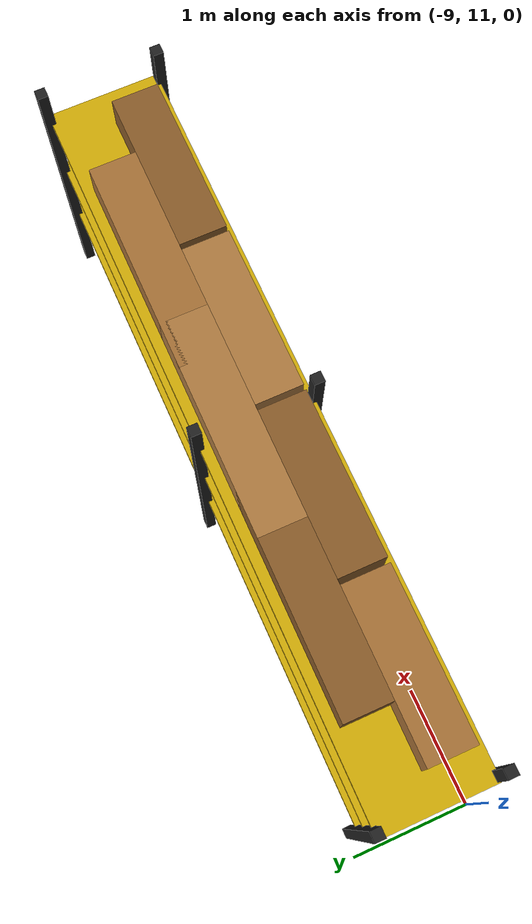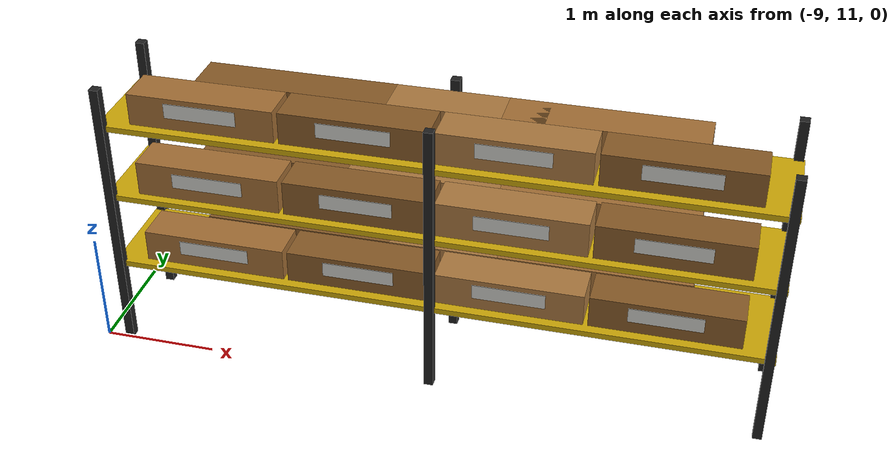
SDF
<sdf version="1.6">
 <world name="aws_industrial_warehouse">
  <model name="shelf_N3">
   <static>true</static>
   <pose>-6 11.5 0 0 0 0</pose>
   <link name="pFL">
    <pose>-2.8 -0.45 1.25 0 0 0</pose>
    <collision name="c">
     <geometry><box><size>0.08 0.08 2.5</size></box></geometry>
     <surface><friction><ode><mu>1.0</mu><mu2>1.0</mu2></ode></friction></surface>
    </collision>
    <visual name="v">
     <geometry><box><size>0.08 0.08 2.5</size></box></geometry>
     <material><ambient>0.10 0.10 0.10 1</ambient><diffuse>0.13 0.13 0.13 1</diffuse></material>
    </visual>
   </link>
   <link name="pBL">
    <pose>-2.8 0.45 1.25 0 0 0</pose>
    <collision name="c">
     <geometry><box><size>0.08 0.08 2.5</size></box></geometry>
     <surface><friction><ode><mu>1.0</mu><mu2>1.0</mu2></ode></friction></surface>
    </collision>
    <visual name="v">
     <geometry><box><size>0.08 0.08 2.5</size></box></geometry>
     <material><ambient>0.10 0.10 0.10 1</ambient><diffuse>0.13 0.13 0.13 1</diffuse></material>
    </visual>
   </link>
   <link name="pFC">
    <pose>0.0 -0.45 1.25 0 0 0</pose>
    <collision name="c">
     <geometry><box><size>0.08 0.08 2.5</size></box></geometry>
     <surface><friction><ode><mu>1.0</mu><mu2>1.0</mu2></ode></friction></surface>
    </collision>
    <visual name="v">
     <geometry><box><size>0.08 0.08 2.5</size></box></geometry>
     <material><ambient>0.10 0.10 0.10 1</ambient><diffuse>0.13 0.13 0.13 1</diffuse></material>
    </visual>
   </link>
   <link name="pBC">
    <pose>0.0 0.45 1.25 0 0 0</pose>
    <collision name="c">
     <geometry><box><size>0.08 0.08 2.5</size></box></geometry>
     <surface><friction><ode><mu>1.0</mu><mu2>1.0</mu2></ode></friction></surface>
    </collision>
    <visual name="v">
     <geometry><box><size>0.08 0.08 2.5</size></box></geometry>
     <material><ambient>0.10 0.10 0.10 1</ambient><diffuse>0.13 0.13 0.13 1</diffuse></material>
    </visual>
   </link>
   <link name="pFR">
    <pose>2.8 -0.45 1.25 0 0 0</pose>
    <collision name="c">
     <geometry><box><size>0.08 0.08 2.5</size></box></geometry>
     <surface><friction><ode><mu>1.0</mu><mu2>1.0</mu2></ode></friction></surface>
    </collision>
    <visual name="v">
     <geometry><box><size>0.08 0.08 2.5</size></box></geometry>
     <material><ambient>0.10 0.10 0.10 1</ambient><diffuse>0.13 0.13 0.13 1</diffuse></material>
    </visual>
   </link>
   <link name="pBR">
    <pose>2.8 0.45 1.25 0 0 0</pose>
    <collision name="c">
     <geometry><box><size>0.08 0.08 2.5</size></box></geometry>
     <surface><friction><ode><mu>1.0</mu><mu2>1.0</mu2></ode></friction></surface>
    </collision>
    <visual name="v">
     <geometry><box><size>0.08 0.08 2.5</size></box></geometry>
     <material><ambient>0.10 0.10 0.10 1</ambient><diffuse>0.13 0.13 0.13 1</diffuse></material>
    </visual>
   </link>
   <link name="deck1">
    <pose>0 0 0.77 0 0 0</pose>
    <collision name="c">
     <geometry><box><size>5.7 0.88 0.05</size></box></geometry>
     <surface><friction><ode><mu>1.0</mu><mu2>1.0</mu2></ode></friction></surface>
    </collision>
    <visual name="v">
     <geometry><box><size>5.7 0.88 0.05</size></box></geometry>
     <material><ambient>0.70 0.55 0.02 1</ambient><diffuse>0.82 0.67 0.03 1</diffuse></material>
    </visual>
   </link>
   <link name="deck2">
    <pose>0 0 1.45 0 0 0</pose>
    <collision name="c">
     <geometry><box><size>5.7 0.88 0.05</size></box></geometry>
     <surface><friction><ode><mu>1.0</mu><mu2>1.0</mu2></ode></friction></surface>
    </collision>
    <visual name="v">
     <geometry><box><size>5.7 0.88 0.05</size></box></geometry>
     <material><ambient>0.70 0.55 0.02 1</ambient><diffuse>0.82 0.67 0.03 1</diffuse></material>
    </visual>
   </link>
   <link name="deck3">
    <pose>0 0 2.12 0 0 0</pose>
    <collision name="c">
     <geometry><box><size>5.7 0.88 0.05</size></box></geometry>
     <surface><friction><ode><mu>1.0</mu><mu2>1.0</mu2></ode></friction></surface>
    </collision>
    <visual name="v">
     <geometry><box><size>5.7 0.88 0.05</size></box></geometry>
     <material><ambient>0.70 0.55 0.02 1</ambient><diffuse>0.82 0.67 0.03 1</diffuse></material>
    </visual>
   </link>
   <link name="bF1_1">
    <pose>-1.95 -0.18 0.94 0 0 0</pose>
    <visual name="v">
     <geometry><box><size>1.26 0.36 0.28</size></box></geometry>
     <material><ambient>0.58 0.38 0.18 1</ambient><diffuse>0.65 0.44 0.21 1</diffuse></material>
    </visual>
   </link>
   <link name="lF1_1">
    <pose>-1.95 -0.363 0.97 0 0 0</pose>
    <visual name="v">
     <geometry><box><size>0.62 0.005 0.13</size></box></geometry>
     <material><ambient>0.76 0.76 0.74 1</ambient><diffuse>0.83 0.83 0.81 1</diffuse></material>
    </visual>
   </link>
   <link name="bF1_2">
    <pose>-0.65 -0.18 0.94 0 0 0</pose>
    <visual name="v">
     <geometry><box><size>1.26 0.36 0.28</size></box></geometry>
     <material><ambient>0.48 0.30 0.12 1</ambient><diffuse>0.54 0.36 0.16 1</diffuse></material>
    </visual>
   </link>
   <link name="lF1_2">
    <pose>-0.65 -0.363 0.97 0 0 0</pose>
    <visual name="v">
     <geometry><box><size>0.62 0.005 0.13</size></box></geometry>
     <material><ambient>0.76 0.76 0.74 1</ambient><diffuse>0.83 0.83 0.81 1</diffuse></material>
    </visual>
   </link>
   <link name="bF1_3">
    <pose>0.65 -0.18 0.94 0 0 0</pose>
    <visual name="v">
     <geometry><box><size>1.26 0.36 0.28</size></box></geometry>
     <material><ambient>0.62 0.43 0.22 1</ambient><diffuse>0.68 0.48 0.25 1</diffuse></material>
    </visual>
   </link>
   <link name="lF1_3">
    <pose>0.65 -0.363 0.97 0 0 0</pose>
    <visual name="v">
     <geometry><box><size>0.62 0.005 0.13</size></box></geometry>
     <material><ambient>0.76 0.76 0.74 1</ambient><diffuse>0.83 0.83 0.81 1</diffuse></material>
    </visual>
   </link>
   <link name="bF1_4">
    <pose>1.95 -0.18 0.94 0 0 0</pose>
    <visual name="v">
     <geometry><box><size>1.26 0.36 0.28</size></box></geometry>
     <material><ambient>0.48 0.30 0.12 1</ambient><diffuse>0.54 0.36 0.16 1</diffuse></material>
    </visual>
   </link>
   <link name="lF1_4">
    <pose>1.95 -0.363 0.97 0 0 0</pose>
    <visual name="v">
     <geometry><box><size>0.62 0.005 0.13</size></box></geometry>
     <material><ambient>0.76 0.76 0.74 1</ambient><diffuse>0.83 0.83 0.81 1</diffuse></material>
    </visual>
   </link>
   <link name="bB1_1">
    <pose>-1.3 0.18 0.94 0 0 0</pose>
    <visual name="v">
     <geometry><box><size>1.65 0.36 0.3</size></box></geometry>
     <material><ambient>0.48 0.30 0.12 1</ambient><diffuse>0.54 0.36 0.16 1</diffuse></material>
    </visual>
   </link>
   <link name="bB1_2">
    <pose>0.0 0.18 0.94 0 0 0</pose>
    <visual name="v">
     <geometry><box><size>1.65 0.36 0.3</size></box></geometry>
     <material><ambient>0.62 0.43 0.22 1</ambient><diffuse>0.68 0.48 0.25 1</diffuse></material>
    </visual>
   </link>
   <link name="bB1_3">
    <pose>1.3 0.18 0.94 0 0 0</pose>
    <visual name="v">
     <geometry><box><size>1.65 0.36 0.3</size></box></geometry>
     <material><ambient>0.58 0.38 0.18 1</ambient><diffuse>0.65 0.44 0.21 1</diffuse></material>
    </visual>
   </link>
   <link name="bF2_1">
    <pose>-1.95 -0.18 1.62 0 0 0</pose>
    <visual name="v">
     <geometry><box><size>1.26 0.36 0.32</size></box></geometry>
     <material><ambient>0.58 0.38 0.18 1</ambient><diffuse>0.65 0.44 0.21 1</diffuse></material>
    </visual>
   </link>
   <link name="lF2_1">
    <pose>-1.95 -0.363 1.6500000000000001 0 0 0</pose>
    <visual name="v">
     <geometry><box><size>0.62 0.005 0.13</size></box></geometry>
     <material><ambient>0.76 0.76 0.74 1</ambient><diffuse>0.83 0.83 0.81 1</diffuse></material>
    </visual>
   </link>
   <link name="bF2_2">
    <pose>-0.65 -0.18 1.62 0 0 0</pose>
    <visual name="v">
     <geometry><box><size>1.26 0.36 0.32</size></box></geometry>
     <material><ambient>0.48 0.30 0.12 1</ambient><diffuse>0.54 0.36 0.16 1</diffuse></material>
    </visual>
   </link>
   <link name="lF2_2">
    <pose>-0.65 -0.363 1.6500000000000001 0 0 0</pose>
    <visual name="v">
     <geometry><box><size>0.62 0.005 0.13</size></box></geometry>
     <material><ambient>0.76 0.76 0.74 1</ambient><diffuse>0.83 0.83 0.81 1</diffuse></material>
    </visual>
   </link>
   <link name="bF2_3">
    <pose>0.65 -0.18 1.62 0 0 0</pose>
    <visual name="v">
     <geometry><box><size>1.26 0.36 0.32</size></box></geometry>
     <material><ambient>0.62 0.43 0.22 1</ambient><diffuse>0.68 0.48 0.25 1</diffuse></material>
    </visual>
   </link>
   <link name="lF2_3">
    <pose>0.65 -0.363 1.6500000000000001 0 0 0</pose>
    <visual name="v">
     <geometry><box><size>0.62 0.005 0.13</size></box></geometry>
     <material><ambient>0.76 0.76 0.74 1</ambient><diffuse>0.83 0.83 0.81 1</diffuse></material>
    </visual>
   </link>
   <link name="bF2_4">
    <pose>1.95 -0.18 1.62 0 0 0</pose>
    <visual name="v">
     <geometry><box><size>1.26 0.36 0.32</size></box></geometry>
     <material><ambient>0.48 0.30 0.12 1</ambient><diffuse>0.54 0.36 0.16 1</diffuse></material>
    </visual>
   </link>
   <link name="lF2_4">
    <pose>1.95 -0.363 1.6500000000000001 0 0 0</pose>
    <visual name="v">
     <geometry><box><size>0.62 0.005 0.13</size></box></geometry>
     <material><ambient>0.76 0.76 0.74 1</ambient><diffuse>0.83 0.83 0.81 1</diffuse></material>
    </visual>
   </link>
   <link name="bB2_1">
    <pose>-1.3 0.18 1.62 0 0 0</pose>
    <visual name="v">
     <geometry><box><size>1.65 0.36 0.28</size></box></geometry>
     <material><ambient>0.48 0.30 0.12 1</ambient><diffuse>0.54 0.36 0.16 1</diffuse></material>
    </visual>
   </link>
   <link name="bB2_2">
    <pose>0.0 0.18 1.62 0 0 0</pose>
    <visual name="v">
     <geometry><box><size>1.65 0.36 0.28</size></box></geometry>
     <material><ambient>0.62 0.43 0.22 1</ambient><diffuse>0.68 0.48 0.25 1</diffuse></material>
    </visual>
   </link>
   <link name="bB2_3">
    <pose>1.3 0.18 1.62 0 0 0</pose>
    <visual name="v">
     <geometry><box><size>1.65 0.36 0.28</size></box></geometry>
     <material><ambient>0.58 0.38 0.18 1</ambient><diffuse>0.65 0.44 0.21 1</diffuse></material>
    </visual>
   </link>
   <link name="bF3_1">
    <pose>-1.95 -0.18 2.29 0 0 0</pose>
    <visual name="v">
     <geometry><box><size>1.26 0.36 0.28</size></box></geometry>
     <material><ambient>0.58 0.38 0.18 1</ambient><diffuse>0.65 0.44 0.21 1</diffuse></material>
    </visual>
   </link>
   <link name="lF3_1">
    <pose>-1.95 -0.363 2.32 0 0 0</pose>
    <visual name="v">
     <geometry><box><size>0.62 0.005 0.13</size></box></geometry>
     <material><ambient>0.76 0.76 0.74 1</ambient><diffuse>0.83 0.83 0.81 1</diffuse></material>
    </visual>
   </link>
   <link name="bF3_2">
    <pose>-0.65 -0.18 2.29 0 0 0</pose>
    <visual name="v">
     <geometry><box><size>1.26 0.36 0.28</size></box></geometry>
     <material><ambient>0.48 0.30 0.12 1</ambient><diffuse>0.54 0.36 0.16 1</diffuse></material>
    </visual>
   </link>
   <link name="lF3_2">
    <pose>-0.65 -0.363 2.32 0 0 0</pose>
    <visual name="v">
     <geometry><box><size>0.62 0.005 0.13</size></box></geometry>
     <material><ambient>0.76 0.76 0.74 1</ambient><diffuse>0.83 0.83 0.81 1</diffuse></material>
    </visual>
   </link>
   <link name="bF3_3">
    <pose>0.65 -0.18 2.29 0 0 0</pose>
    <visual name="v">
     <geometry><box><size>1.26 0.36 0.28</size></box></geometry>
     <material><ambient>0.62 0.43 0.22 1</ambient><diffuse>0.68 0.48 0.25 1</diffuse></material>
    </visual>
   </link>
   <link name="lF3_3">
    <pose>0.65 -0.363 2.32 0 0 0</pose>
    <visual name="v">
     <geometry><box><size>0.62 0.005 0.13</size></box></geometry>
     <material><ambient>0.76 0.76 0.74 1</ambient><diffuse>0.83 0.83 0.81 1</diffuse></material>
    </visual>
   </link>
   <link name="bF3_4">
    <pose>1.95 -0.18 2.29 0 0 0</pose>
    <visual name="v">
     <geometry><box><size>1.26 0.36 0.28</size></box></geometry>
     <material><ambient>0.48 0.30 0.12 1</ambient><diffuse>0.54 0.36 0.16 1</diffuse></material>
    </visual>
   </link>
   <link name="lF3_4">
    <pose>1.95 -0.363 2.32 0 0 0</pose>
    <visual name="v">
     <geometry><box><size>0.62 0.005 0.13</size></box></geometry>
     <material><ambient>0.76 0.76 0.74 1</ambient><diffuse>0.83 0.83 0.81 1</diffuse></material>
    </visual>
   </link>
   <link name="bB3_1">
    <pose>-1.3 0.18 2.29 0 0 0</pose>
    <visual name="v">
     <geometry><box><size>1.65 0.36 0.28</size></box></geometry>
     <material><ambient>0.48 0.30 0.12 1</ambient><diffuse>0.54 0.36 0.16 1</diffuse></material>
    </visual>
   </link>
   <link name="bB3_2">
    <pose>0.0 0.18 2.29 0 0 0</pose>
    <visual name="v">
     <geometry><box><size>1.65 0.36 0.28</size></box></geometry>
     <material><ambient>0.62 0.43 0.22 1</ambient><diffuse>0.68 0.48 0.25 1</diffuse></material>
    </visual>
   </link>
   <link name="bB3_3">
    <pose>1.3 0.18 2.29 0 0 0</pose>
    <visual name="v">
     <geometry><box><size>1.65 0.36 0.28</size></box></geometry>
     <material><ambient>0.58 0.38 0.18 1</ambient><diffuse>0.65 0.44 0.21 1</diffuse></material>
    </visual>
   </link>
  </model>
 </world>
</sdf>
